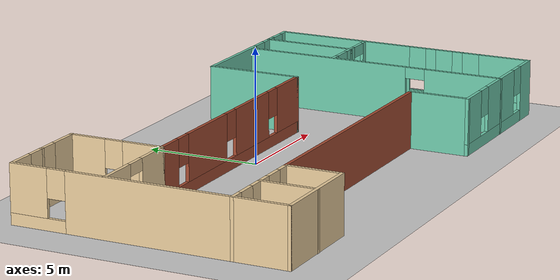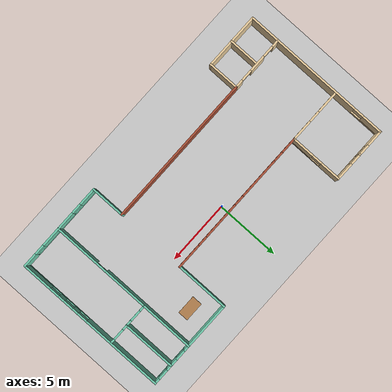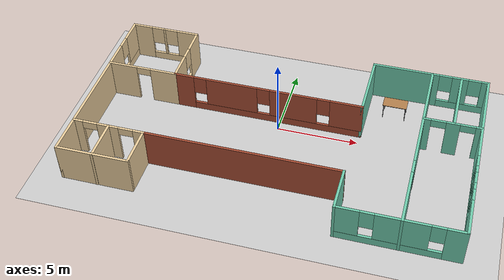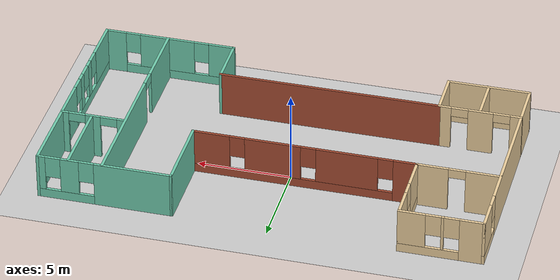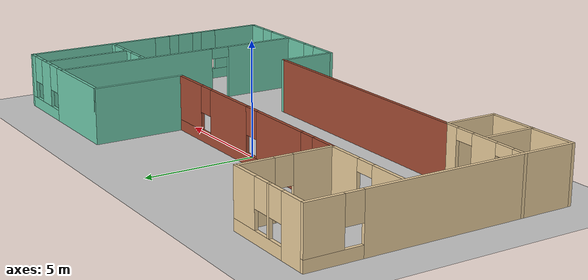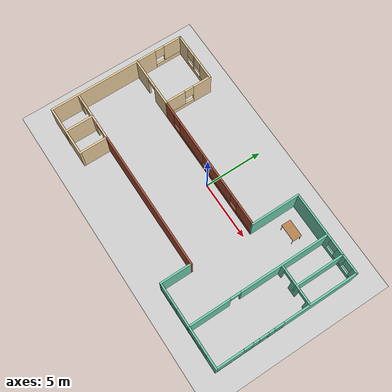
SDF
<sdf version="1.6">
 <world name="default">
  <model name="ground_plane">
   <static>1</static>
   <link name="link">
    <collision name="collision">
     <geometry><plane><normal>0 0 1</normal><size>100 100</size></plane></geometry>
     <surface><friction><ode><mu>100</mu><mu2>50</mu2></ode></friction></surface>
    </collision>
    <visual name="visual">
     <cast_shadows>0</cast_shadows>
     <geometry><plane><normal>0 0 1</normal><size>100 100</size></plane></geometry>
     <material>
      <script><uri>file://media/materials/scripts/gazebo.material</uri><name>Gazebo/Grey</name></script>
     </material>
    </visual>
   </link>
  </model>
  <model name="model.sdf">
   <pose>0.5153 -1.32728 0 0 -0 0</pose>
   <link name="Wall_100">
    <pose>-11.65 0.128883 0 0 -0 1.5708</pose>
    <visual name="Wall_100_Visual_0">
     <pose>-1.2305 0 1.25 0 -0 0</pose>
     <geometry><box><size>9.53899 0.15 2.5</size></box></geometry>
     <material>
      <script><uri>file://media/materials/scripts/gazebo.material</uri><name>Gazebo/Grey</name></script>
      <ambient>0.921569 0.807843 0.615686 1</ambient>
     </material>
     <meta><layer>0</layer></meta>
    </visual>
    <collision name="Wall_100_Collision_0">
     <geometry><box><size>9.53899 0.15 2.5</size></box></geometry>
     <pose>-1.2305 0 1.25 0 -0 0</pose>
    </collision>
    <visual name="Wall_100_Visual_1">
     <pose>4.7695 0 0.25 0 -0 0</pose>
     <geometry><box><size>2.46101 0.15 0.5</size></box></geometry>
     <material>
      <script><uri>file://media/materials/scripts/gazebo.material</uri><name>Gazebo/Grey</name></script>
      <ambient>0.921569 0.807843 0.615686 1</ambient>
     </material>
     <meta><layer>0</layer></meta>
    </visual>
    <collision name="Wall_100_Collision_1">
     <geometry><box><size>2.46101 0.15 0.5</size></box></geometry>
     <pose>4.7695 0 0.25 0 -0 0</pose>
    </collision>
    <visual name="Wall_100_Visual_2">
     <pose>5.1695 0 1.5 0 -0 0</pose>
     <geometry><box><size>1.66101 0.15 2</size></box></geometry>
     <material>
      <script><uri>file://media/materials/scripts/gazebo.material</uri><name>Gazebo/Grey</name></script>
      <ambient>0.921569 0.807843 0.615686 1</ambient>
     </material>
     <meta><layer>0</layer></meta>
    </visual>
    <collision name="Wall_100_Collision_2">
     <geometry><box><size>1.66101 0.15 2</size></box></geometry>
     <pose>5.1695 0 1.5 0 -0 0</pose>
    </collision>
    <visual name="Wall_100_Visual_3">
     <pose>3.93899 0 1.9 0 -0 0</pose>
     <geometry><box><size>0.8 0.15 1.2</size></box></geometry>
     <material>
      <script><uri>file://media/materials/scripts/gazebo.material</uri><name>Gazebo/Grey</name></script>
      <ambient>0.921569 0.807843 0.615686 1</ambient>
     </material>
     <meta><layer>0</layer></meta>
    </visual>
    <collision name="Wall_100_Collision_3">
     <geometry><box><size>0.8 0.15 1.2</size></box></geometry>
     <pose>3.93899 0 1.9 0 -0 0</pose>
    </collision>
   </link>
   <link name="Wall_102">
    <pose>-9.475 -3.44612 0 0 -0 3.14159</pose>
    <visual name="Wall_102_Visual_0">
     <pose>-1.89007 0 1.25 0 -0 0</pose>
     <geometry><box><size>0.719867 0.15 2.5</size></box></geometry>
     <material>
      <script><uri>file://media/materials/scripts/gazebo.material</uri><name>Gazebo/Grey</name></script>
      <ambient>0.921569 0.807843 0.615686 1</ambient>
     </material>
     <meta><layer>0</layer></meta>
    </visual>
    <collision name="Wall_102_Collision_0">
     <geometry><box><size>0.719867 0.15 2.5</size></box></geometry>
     <pose>-1.89007 0 1.25 0 -0 0</pose>
    </collision>
    <visual name="Wall_102_Visual_1">
     <pose>0.035726 0 1.25 0 -0 0</pose>
     <geometry><box><size>1.33172 0.15 2.5</size></box></geometry>
     <material>
      <script><uri>file://media/materials/scripts/gazebo.material</uri><name>Gazebo/Grey</name></script>
      <ambient>0.921569 0.807843 0.615686 1</ambient>
     </material>
     <meta><layer>0</layer></meta>
    </visual>
    <collision name="Wall_102_Collision_1">
     <geometry><box><size>1.33172 0.15 2.5</size></box></geometry>
     <pose>0.035726 0 1.25 0 -0 0</pose>
    </collision>
    <visual name="Wall_102_Visual_2">
     <pose>1.92579 0 1.25 0 -0 0</pose>
     <geometry><box><size>0.648414 0.15 2.5</size></box></geometry>
     <material>
      <script><uri>file://media/materials/scripts/gazebo.material</uri><name>Gazebo/Grey</name></script>
      <ambient>0.921569 0.807843 0.615686 1</ambient>
     </material>
     <meta><layer>0</layer></meta>
    </visual>
    <collision name="Wall_102_Collision_2">
     <geometry><box><size>0.648414 0.15 2.5</size></box></geometry>
     <pose>1.92579 0 1.25 0 -0 0</pose>
    </collision>
    <visual name="Wall_102_Visual_3">
     <pose>-1.08013 0 2.25 0 -0 0</pose>
     <geometry><box><size>0.9 0.15 0.5</size></box></geometry>
     <material>
      <script><uri>file://media/materials/scripts/gazebo.material</uri><name>Gazebo/Grey</name></script>
      <ambient>0.921569 0.807843 0.615686 1</ambient>
     </material>
     <meta><layer>0</layer></meta>
    </visual>
    <collision name="Wall_102_Collision_3">
     <geometry><box><size>0.9 0.15 0.5</size></box></geometry>
     <pose>-1.08013 0 2.25 0 -0 0</pose>
    </collision>
    <visual name="Wall_102_Visual_4">
     <pose>1.15159 0 2.25 0 -0 0</pose>
     <geometry><box><size>0.9 0.15 0.5</size></box></geometry>
     <material>
      <script><uri>file://media/materials/scripts/gazebo.material</uri><name>Gazebo/Grey</name></script>
      <ambient>0.921569 0.807843 0.615686 1</ambient>
     </material>
     <meta><layer>0</layer></meta>
    </visual>
    <collision name="Wall_102_Collision_4">
     <geometry><box><size>0.9 0.15 0.5</size></box></geometry>
     <pose>1.15159 0 2.25 0 -0 0</pose>
    </collision>
   </link>
   <link name="Wall_104">
    <pose>-9.475 1.95388 0 0 -0 3.14159</pose>
    <visual name="Wall_104_Visual_0">
     <pose>-1.38793 0 1.25 0 -0 0</pose>
     <geometry><box><size>1.72414 0.15 2.5</size></box></geometry>
     <material>
      <script><uri>file://media/materials/scripts/gazebo.material</uri><name>Gazebo/Grey</name></script>
      <ambient>0.921569 0.807843 0.615686 1</ambient>
     </material>
     <meta><layer>0</layer></meta>
    </visual>
    <collision name="Wall_104_Collision_0">
     <geometry><box><size>1.72414 0.15 2.5</size></box></geometry>
     <pose>-1.38793 0 1.25 0 -0 0</pose>
    </collision>
    <visual name="Wall_104_Visual_1">
     <pose>1.31207 0 1.25 0 -0 0</pose>
     <geometry><box><size>1.87586 0.15 2.5</size></box></geometry>
     <material>
      <script><uri>file://media/materials/scripts/gazebo.material</uri><name>Gazebo/Grey</name></script>
      <ambient>0.921569 0.807843 0.615686 1</ambient>
     </material>
     <meta><layer>0</layer></meta>
    </visual>
    <collision name="Wall_104_Collision_1">
     <geometry><box><size>1.87586 0.15 2.5</size></box></geometry>
     <pose>1.31207 0 1.25 0 -0 0</pose>
    </collision>
    <visual name="Wall_104_Visual_2">
     <pose>-0.07586 0 2.25 0 -0 0</pose>
     <geometry><box><size>0.9 0.15 0.5</size></box></geometry>
     <material>
      <script><uri>file://media/materials/scripts/gazebo.material</uri><name>Gazebo/Grey</name></script>
      <ambient>0.921569 0.807843 0.615686 1</ambient>
     </material>
     <meta><layer>0</layer></meta>
    </visual>
    <collision name="Wall_104_Collision_2">
     <geometry><box><size>0.9 0.15 0.5</size></box></geometry>
     <pose>-0.07586 0 2.25 0 -0 0</pose>
    </collision>
   </link>
   <link name="Wall_106">
    <pose>8.20964 -0.003883 0 0 0 -1.5708</pose>
    <visual name="Wall_106_Visual_0">
     <pose>-2.24841 0 1.25 0 -0 0</pose>
     <geometry><box><size>7.75318 0.15 2.5</size></box></geometry>
     <material>
      <script><uri>file://media/materials/scripts/gazebo.material</uri><name>Gazebo/Grey</name></script>
      <ambient>0.435294 0.796078 0.67451 1</ambient>
     </material>
     <meta><layer>0</layer></meta>
    </visual>
    <collision name="Wall_106_Collision_0">
     <geometry><box><size>7.75318 0.15 2.5</size></box></geometry>
     <pose>-2.24841 0 1.25 0 -0 0</pose>
    </collision>
    <visual name="Wall_106_Visual_1">
     <pose>4.32659 0 1.25 0 -0 0</pose>
     <geometry><box><size>3.59682 0.15 2.5</size></box></geometry>
     <material>
      <script><uri>file://media/materials/scripts/gazebo.material</uri><name>Gazebo/Grey</name></script>
      <ambient>0.435294 0.796078 0.67451 1</ambient>
     </material>
     <meta><layer>0</layer></meta>
    </visual>
    <collision name="Wall_106_Collision_1">
     <geometry><box><size>3.59682 0.15 2.5</size></box></geometry>
     <pose>4.32659 0 1.25 0 -0 0</pose>
    </collision>
    <visual name="Wall_106_Visual_2">
     <pose>2.07818 0 2.25 0 -0 0</pose>
     <geometry><box><size>0.9 0.15 0.5</size></box></geometry>
     <material>
      <script><uri>file://media/materials/scripts/gazebo.material</uri><name>Gazebo/Grey</name></script>
      <ambient>0.435294 0.796078 0.67451 1</ambient>
     </material>
     <meta><layer>0</layer></meta>
    </visual>
    <collision name="Wall_106_Collision_2">
     <geometry><box><size>0.9 0.15 0.5</size></box></geometry>
     <pose>2.07818 0 2.25 0 -0 0</pose>
    </collision>
   </link>
   <link name="Wall_130">
    <pose>9.93002 1.93375 0 0 -0 0</pose>
    <visual name="Wall_130_Visual_0">
     <pose>-1.51278 0 1.25 0 -0 0</pose>
     <geometry><box><size>0.474449 0.15 2.5</size></box></geometry>
     <material>
      <script><uri>file://media/materials/scripts/gazebo.material</uri><name>Gazebo/Grey</name></script>
      <ambient>0.435294 0.796078 0.67451 1</ambient>
     </material>
     <meta><layer>0</layer></meta>
    </visual>
    <collision name="Wall_130_Collision_0">
     <geometry><box><size>0.474449 0.15 2.5</size></box></geometry>
     <pose>-1.51278 0 1.25 0 -0 0</pose>
    </collision>
    <visual name="Wall_130_Visual_1">
     <pose>0.035744 0 1.25 0 -0 0</pose>
     <geometry><box><size>0.82259 0.15 2.5</size></box></geometry>
     <material>
      <script><uri>file://media/materials/scripts/gazebo.material</uri><name>Gazebo/Grey</name></script>
      <ambient>0.435294 0.796078 0.67451 1</ambient>
     </material>
     <meta><layer>0</layer></meta>
    </visual>
    <collision name="Wall_130_Collision_1">
     <geometry><box><size>0.82259 0.15 2.5</size></box></geometry>
     <pose>0.035744 0 1.25 0 -0 0</pose>
    </collision>
    <visual name="Wall_130_Visual_2">
     <pose>1.54852 0 1.25 0 -0 0</pose>
     <geometry><box><size>0.402961 0.15 2.5</size></box></geometry>
     <material>
      <script><uri>file://media/materials/scripts/gazebo.material</uri><name>Gazebo/Grey</name></script>
      <ambient>0.435294 0.796078 0.67451 1</ambient>
     </material>
     <meta><layer>0</layer></meta>
    </visual>
    <collision name="Wall_130_Collision_2">
     <geometry><box><size>0.402961 0.15 2.5</size></box></geometry>
     <pose>1.54852 0 1.25 0 -0 0</pose>
    </collision>
    <visual name="Wall_130_Visual_3">
     <pose>-0.825551 0 2.25 0 -0 0</pose>
     <geometry><box><size>0.9 0.15 0.5</size></box></geometry>
     <material>
      <script><uri>file://media/materials/scripts/gazebo.material</uri><name>Gazebo/Grey</name></script>
      <ambient>0.435294 0.796078 0.67451 1</ambient>
     </material>
     <meta><layer>0</layer></meta>
    </visual>
    <collision name="Wall_130_Collision_3">
     <geometry><box><size>0.9 0.15 0.5</size></box></geometry>
     <pose>-0.825551 0 2.25 0 -0 0</pose>
    </collision>
    <visual name="Wall_130_Visual_4">
     <pose>0.897039 0 2.25 0 -0 0</pose>
     <geometry><box><size>0.9 0.15 0.5</size></box></geometry>
     <material>
      <script><uri>file://media/materials/scripts/gazebo.material</uri><name>Gazebo/Grey</name></script>
      <ambient>0.435294 0.796078 0.67451 1</ambient>
     </material>
     <meta><layer>0</layer></meta>
    </visual>
    <collision name="Wall_130_Collision_4">
     <geometry><box><size>0.9 0.15 0.5</size></box></geometry>
     <pose>0.897039 0 2.25 0 -0 0</pose>
    </collision>
   </link>
   <link name="Wall_132">
    <collision name="Wall_132_Collision">
     <geometry><box><size>4.25 0.15 2.5</size></box></geometry>
     <pose>0 0 1.25 0 -0 0</pose>
    </collision>
    <visual name="Wall_132_Visual">
     <pose>0 0 1.25 0 -0 0</pose>
     <geometry><box><size>4.25 0.15 2.5</size></box></geometry>
     <material>
      <script><uri>file://media/materials/scripts/gazebo.material</uri><name>Gazebo/Grey</name></script>
      <ambient>0.435294 0.796078 0.67451 1</ambient>
     </material>
     <meta><layer>0</layer></meta>
    </visual>
    <pose>10.02 3.98375 0 0 -0 1.5708</pose>
   </link>
   <link name="Wall_139">
    <collision name="Wall_139_Collision">
     <geometry><box><size>2.5 0.15 2.5</size></box></geometry>
     <pose>0 0 1.25 0 -0 0</pose>
    </collision>
    <visual name="Wall_139_Visual">
     <pose>0 0 1.25 0 -0 0</pose>
     <geometry><box><size>2.5 0.15 2.5</size></box></geometry>
     <material>
      <script><uri>file://media/materials/scripts/gazebo.material</uri><name>Gazebo/Grey</name></script>
      <ambient>0.921569 0.807843 0.615686 1</ambient>
     </material>
     <meta><layer>0</layer></meta>
    </visual>
    <pose>-9.46252 -4.63532 0 0 0 -1.5708</pose>
   </link>
   <link name="Wall_89">
    <pose>-9.475 6.05388 0 0 -0 0</pose>
    <visual name="Wall_89_Visual_0">
     <pose>-1.58835 0 1.25 0 -0 0</pose>
     <geometry><box><size>1.3233 0.15 2.5</size></box></geometry>
     <material>
      <script><uri>file://media/materials/scripts/gazebo.material</uri><name>Gazebo/Grey</name></script>
      <ambient>0.921569 0.807843 0.615686 1</ambient>
     </material>
     <meta><layer>0</layer></meta>
    </visual>
    <collision name="Wall_89_Collision_0">
     <geometry><box><size>1.3233 0.15 2.5</size></box></geometry>
     <pose>-1.58835 0 1.25 0 -0 0</pose>
    </collision>
    <visual name="Wall_89_Visual_1">
     <pose>0.661648 0 0.25 0 -0 0</pose>
     <geometry><box><size>3.17671 0.15 0.5</size></box></geometry>
     <material>
      <script><uri>file://media/materials/scripts/gazebo.material</uri><name>Gazebo/Grey</name></script>
      <ambient>0.921569 0.807843 0.615686 1</ambient>
     </material>
     <meta><layer>0</layer></meta>
    </visual>
    <collision name="Wall_89_Collision_1">
     <geometry><box><size>3.17671 0.15 0.5</size></box></geometry>
     <pose>0.661648 0 0.25 0 -0 0</pose>
    </collision>
    <visual name="Wall_89_Visual_2">
     <pose>-0.058043 0 1.5 0 -0 0</pose>
     <geometry><box><size>0.137323 0.15 2</size></box></geometry>
     <material>
      <script><uri>file://media/materials/scripts/gazebo.material</uri><name>Gazebo/Grey</name></script>
      <ambient>0.921569 0.807843 0.615686 1</ambient>
     </material>
     <meta><layer>0</layer></meta>
    </visual>
    <collision name="Wall_89_Collision_2">
     <geometry><box><size>0.137323 0.15 2</size></box></geometry>
     <pose>-0.058043 0 1.5 0 -0 0</pose>
    </collision>
    <visual name="Wall_89_Visual_3">
     <pose>1.53031 0 1.5 0 -0 0</pose>
     <geometry><box><size>1.43938 0.15 2</size></box></geometry>
     <material>
      <script><uri>file://media/materials/scripts/gazebo.material</uri><name>Gazebo/Grey</name></script>
      <ambient>0.921569 0.807843 0.615686 1</ambient>
     </material>
     <meta><layer>0</layer></meta>
    </visual>
    <collision name="Wall_89_Collision_3">
     <geometry><box><size>1.43938 0.15 2</size></box></geometry>
     <pose>1.53031 0 1.5 0 -0 0</pose>
    </collision>
    <visual name="Wall_89_Visual_4">
     <pose>-0.526705 0 1.9 0 -0 0</pose>
     <geometry><box><size>0.8 0.15 1.2</size></box></geometry>
     <material>
      <script><uri>file://media/materials/scripts/gazebo.material</uri><name>Gazebo/Grey</name></script>
      <ambient>0.921569 0.807843 0.615686 1</ambient>
     </material>
     <meta><layer>0</layer></meta>
    </visual>
    <collision name="Wall_89_Collision_4">
     <geometry><box><size>0.8 0.15 1.2</size></box></geometry>
     <pose>-0.526705 0 1.9 0 -0 0</pose>
    </collision>
    <visual name="Wall_89_Visual_5">
     <pose>0.410618 0 1.9 0 -0 0</pose>
     <geometry><box><size>0.8 0.15 1.2</size></box></geometry>
     <material>
      <script><uri>file://media/materials/scripts/gazebo.material</uri><name>Gazebo/Grey</name></script>
      <ambient>0.921569 0.807843 0.615686 1</ambient>
     </material>
     <meta><layer>0</layer></meta>
    </visual>
    <collision name="Wall_89_Collision_5">
     <geometry><box><size>0.8 0.15 1.2</size></box></geometry>
     <pose>0.410618 0 1.9 0 -0 0</pose>
    </collision>
   </link>
   <link name="Wall_90">
    <pose>-7.3 4.00388 0 0 0 -1.5708</pose>
    <visual name="Wall_90_Visual_0">
     <pose>-1.30565 0 1.25 0 -0 0</pose>
     <geometry><box><size>1.63869 0.15 2.5</size></box></geometry>
     <material>
      <script><uri>file://media/materials/scripts/gazebo.material</uri><name>Gazebo/Grey</name></script>
      <ambient>0.921569 0.807843 0.615686 1</ambient>
     </material>
     <meta><layer>0</layer></meta>
    </visual>
    <collision name="Wall_90_Collision_0">
     <geometry><box><size>1.63869 0.15 2.5</size></box></geometry>
     <pose>-1.30565 0 1.25 0 -0 0</pose>
    </collision>
    <visual name="Wall_90_Visual_1">
     <pose>0.819347 0 0.25 0 -0 0</pose>
     <geometry><box><size>2.61131 0.15 0.5</size></box></geometry>
     <material>
      <script><uri>file://media/materials/scripts/gazebo.material</uri><name>Gazebo/Grey</name></script>
      <ambient>0.921569 0.807843 0.615686 1</ambient>
     </material>
     <meta><layer>0</layer></meta>
    </visual>
    <collision name="Wall_90_Collision_1">
     <geometry><box><size>2.61131 0.15 0.5</size></box></geometry>
     <pose>0.819347 0 0.25 0 -0 0</pose>
    </collision>
    <visual name="Wall_90_Visual_2">
     <pose>1.21935 0 1.5 0 -0 0</pose>
     <geometry><box><size>1.81131 0.15 2</size></box></geometry>
     <material>
      <script><uri>file://media/materials/scripts/gazebo.material</uri><name>Gazebo/Grey</name></script>
      <ambient>0.921569 0.807843 0.615686 1</ambient>
     </material>
     <meta><layer>0</layer></meta>
    </visual>
    <collision name="Wall_90_Collision_2">
     <geometry><box><size>1.81131 0.15 2</size></box></geometry>
     <pose>1.21935 0 1.5 0 -0 0</pose>
    </collision>
    <visual name="Wall_90_Visual_3">
     <pose>-0.086306 0 1.9 0 -0 0</pose>
     <geometry><box><size>0.8 0.15 1.2</size></box></geometry>
     <material>
      <script><uri>file://media/materials/scripts/gazebo.material</uri><name>Gazebo/Grey</name></script>
      <ambient>0.921569 0.807843 0.615686 1</ambient>
     </material>
     <meta><layer>0</layer></meta>
    </visual>
    <collision name="Wall_90_Collision_3">
     <geometry><box><size>0.8 0.15 1.2</size></box></geometry>
     <pose>-0.086306 0 1.9 0 -0 0</pose>
    </collision>
   </link>
   <link name="Wall_91">
    <pose>-1.375 1.95388 0 0 -0 0</pose>
    <visual name="Wall_91_Visual_0">
     <pose>-5.3488 0 1.25 0 -0 0</pose>
     <geometry><box><size>1.3024 0.15 2.5</size></box></geometry>
     <material>
      <script><uri>file://media/materials/scripts/gazebo.material</uri><name>Gazebo/Bricks</name></script>
      <ambient>0.996078 0.47451 0.0196078 1</ambient>
     </material>
     <meta><layer>0</layer></meta>
    </visual>
    <collision name="Wall_91_Collision_0">
     <geometry><box><size>1.3024 0.15 2.5</size></box></geometry>
     <pose>-5.3488 0 1.25 0 -0 0</pose>
    </collision>
    <visual name="Wall_91_Visual_1">
     <pose>0.651202 0 0.25 0 -0 0</pose>
     <geometry><box><size>10.6976 0.15 0.5</size></box></geometry>
     <material>
      <script><uri>file://media/materials/scripts/gazebo.material</uri><name>Gazebo/Bricks</name></script>
      <ambient>0.996078 0.47451 0.0196078 1</ambient>
     </material>
     <meta><layer>0</layer></meta>
    </visual>
    <collision name="Wall_91_Collision_1">
     <geometry><box><size>10.6976 0.15 0.5</size></box></geometry>
     <pose>0.651202 0 0.25 0 -0 0</pose>
    </collision>
    <visual name="Wall_91_Visual_2">
     <pose>-2.2611 0 1.5 0 -0 0</pose>
     <geometry><box><size>3.273 0.15 2</size></box></geometry>
     <material>
      <script><uri>file://media/materials/scripts/gazebo.material</uri><name>Gazebo/Bricks</name></script>
      <ambient>0.996078 0.47451 0.0196078 1</ambient>
     </material>
     <meta><layer>0</layer></meta>
    </visual>
    <collision name="Wall_91_Collision_2">
     <geometry><box><size>3.273 0.15 2</size></box></geometry>
     <pose>-2.2611 0 1.5 0 -0 0</pose>
    </collision>
    <visual name="Wall_91_Visual_3">
     <pose>1.66433 0 1.5 0 -0 0</pose>
     <geometry><box><size>2.97785 0.15 2</size></box></geometry>
     <material>
      <script><uri>file://media/materials/scripts/gazebo.material</uri><name>Gazebo/Bricks</name></script>
      <ambient>0.996078 0.47451 0.0196078 1</ambient>
     </material>
     <meta><layer>0</layer></meta>
    </visual>
    <collision name="Wall_91_Collision_3">
     <geometry><box><size>2.97785 0.15 2</size></box></geometry>
     <pose>1.66433 0 1.5 0 -0 0</pose>
    </collision>
    <visual name="Wall_91_Visual_4">
     <pose>4.97663 0 1.5 0 -0 0</pose>
     <geometry><box><size>2.04675 0.15 2</size></box></geometry>
     <material>
      <script><uri>file://media/materials/scripts/gazebo.material</uri><name>Gazebo/Bricks</name></script>
      <ambient>0.996078 0.47451 0.0196078 1</ambient>
     </material>
     <meta><layer>0</layer></meta>
    </visual>
    <collision name="Wall_91_Collision_4">
     <geometry><box><size>2.04675 0.15 2</size></box></geometry>
     <pose>4.97663 0 1.5 0 -0 0</pose>
    </collision>
    <visual name="Wall_91_Visual_5">
     <pose>-4.2976 0 1.9 0 -0 0</pose>
     <geometry><box><size>0.8 0.15 1.2</size></box></geometry>
     <material>
      <script><uri>file://media/materials/scripts/gazebo.material</uri><name>Gazebo/Bricks</name></script>
      <ambient>0.996078 0.47451 0.0196078 1</ambient>
     </material>
     <meta><layer>0</layer></meta>
    </visual>
    <collision name="Wall_91_Collision_5">
     <geometry><box><size>0.8 0.15 1.2</size></box></geometry>
     <pose>-4.2976 0 1.9 0 -0 0</pose>
    </collision>
    <visual name="Wall_91_Visual_6">
     <pose>-0.224598 0 1.9 0 -0 0</pose>
     <geometry><box><size>0.8 0.15 1.2</size></box></geometry>
     <material>
      <script><uri>file://media/materials/scripts/gazebo.material</uri><name>Gazebo/Bricks</name></script>
      <ambient>0.996078 0.47451 0.0196078 1</ambient>
     </material>
     <meta><layer>0</layer></meta>
    </visual>
    <collision name="Wall_91_Collision_6">
     <geometry><box><size>0.8 0.15 1.2</size></box></geometry>
     <pose>-0.224598 0 1.9 0 -0 0</pose>
    </collision>
    <visual name="Wall_91_Visual_7">
     <pose>3.55326 0 1.9 0 -0 0</pose>
     <geometry><box><size>0.8 0.15 1.2</size></box></geometry>
     <material>
      <script><uri>file://media/materials/scripts/gazebo.material</uri><name>Gazebo/Bricks</name></script>
      <ambient>0.996078 0.47451 0.0196078 1</ambient>
     </material>
     <meta><layer>0</layer></meta>
    </visual>
    <collision name="Wall_91_Collision_7">
     <geometry><box><size>0.8 0.15 1.2</size></box></geometry>
     <pose>3.55326 0 1.9 0 -0 0</pose>
    </collision>
   </link>
   <link name="Wall_92">
    <collision name="Wall_92_Collision">
     <geometry><box><size>4.25 0.15 2.5</size></box></geometry>
     <pose>0 0 1.25 0 -0 0</pose>
    </collision>
    <visual name="Wall_92_Visual">
     <pose>0 0 1.25 0 -0 0</pose>
     <geometry><box><size>4.25 0.15 2.5</size></box></geometry>
     <material>
      <script><uri>file://media/materials/scripts/gazebo.material</uri><name>Gazebo/Grey</name></script>
      <ambient>0.435294 0.796078 0.67451 1</ambient>
     </material>
     <meta><layer>0</layer></meta>
    </visual>
    <pose>4.55 4.00388 0 0 -0 1.5708</pose>
   </link>
   <link name="Wall_93">
    <pose>8.1 6.05388 0 0 -0 0</pose>
    <visual name="Wall_93_Visual_0">
     <pose>-1.53665 0 1.25 0 -0 0</pose>
     <geometry><box><size>4.1767 0.15 2.5</size></box></geometry>
     <material>
      <script><uri>file://media/materials/scripts/gazebo.material</uri><name>Gazebo/Grey</name></script>
      <ambient>0.435294 0.796078 0.67451 1</ambient>
     </material>
     <meta><layer>0</layer></meta>
    </visual>
    <collision name="Wall_93_Collision_0">
     <geometry><box><size>4.1767 0.15 2.5</size></box></geometry>
     <pose>-1.53665 0 1.25 0 -0 0</pose>
    </collision>
    <visual name="Wall_93_Visual_1">
     <pose>2.08835 0 0.25 0 -0 0</pose>
     <geometry><box><size>3.0733 0.15 0.5</size></box></geometry>
     <material>
      <script><uri>file://media/materials/scripts/gazebo.material</uri><name>Gazebo/Grey</name></script>
      <ambient>0.435294 0.796078 0.67451 1</ambient>
     </material>
     <meta><layer>0</layer></meta>
    </visual>
    <collision name="Wall_93_Collision_1">
     <geometry><box><size>3.0733 0.15 0.5</size></box></geometry>
     <pose>2.08835 0 0.25 0 -0 0</pose>
    </collision>
    <visual name="Wall_93_Visual_2">
     <pose>1.8449 0 1.5 0 -0 0</pose>
     <geometry><box><size>0.986389 0.15 2</size></box></geometry>
     <material>
      <script><uri>file://media/materials/scripts/gazebo.material</uri><name>Gazebo/Grey</name></script>
      <ambient>0.435294 0.796078 0.67451 1</ambient>
     </material>
     <meta><layer>0</layer></meta>
    </visual>
    <collision name="Wall_93_Collision_2">
     <geometry><box><size>0.986389 0.15 2</size></box></geometry>
     <pose>1.8449 0 1.5 0 -0 0</pose>
    </collision>
    <visual name="Wall_93_Visual_3">
     <pose>3.38155 0 1.5 0 -0 0</pose>
     <geometry><box><size>0.486907 0.15 2</size></box></geometry>
     <material>
      <script><uri>file://media/materials/scripts/gazebo.material</uri><name>Gazebo/Grey</name></script>
      <ambient>0.435294 0.796078 0.67451 1</ambient>
     </material>
     <meta><layer>0</layer></meta>
    </visual>
    <collision name="Wall_93_Collision_3">
     <geometry><box><size>0.486907 0.15 2</size></box></geometry>
     <pose>3.38155 0 1.5 0 -0 0</pose>
    </collision>
    <visual name="Wall_93_Visual_4">
     <pose>0.951704 0 1.9 0 -0 0</pose>
     <geometry><box><size>0.8 0.15 1.2</size></box></geometry>
     <material>
      <script><uri>file://media/materials/scripts/gazebo.material</uri><name>Gazebo/Grey</name></script>
      <ambient>0.435294 0.796078 0.67451 1</ambient>
     </material>
     <meta><layer>0</layer></meta>
    </visual>
    <collision name="Wall_93_Collision_4">
     <geometry><box><size>0.8 0.15 1.2</size></box></geometry>
     <pose>0.951704 0 1.9 0 -0 0</pose>
    </collision>
    <visual name="Wall_93_Visual_5">
     <pose>2.73809 0 1.9 0 -0 0</pose>
     <geometry><box><size>0.8 0.15 1.2</size></box></geometry>
     <material>
      <script><uri>file://media/materials/scripts/gazebo.material</uri><name>Gazebo/Grey</name></script>
      <ambient>0.435294 0.796078 0.67451 1</ambient>
     </material>
     <meta><layer>0</layer></meta>
    </visual>
    <collision name="Wall_93_Collision_5">
     <geometry><box><size>0.8 0.15 1.2</size></box></geometry>
     <pose>2.73809 0 1.9 0 -0 0</pose>
    </collision>
   </link>
   <link name="Wall_94">
    <pose>11.65 0.003883 0 0 0 -1.5708</pose>
    <visual name="Wall_94_Visual_0">
     <pose>-2.8954 0 1.25 0 -0 0</pose>
     <geometry><box><size>6.45921 0.15 2.5</size></box></geometry>
     <material>
      <script><uri>file://media/materials/scripts/gazebo.material</uri><name>Gazebo/Grey</name></script>
      <ambient>0.435294 0.796078 0.67451 1</ambient>
     </material>
     <meta><layer>0</layer></meta>
    </visual>
    <collision name="Wall_94_Collision_0">
     <geometry><box><size>6.45921 0.15 2.5</size></box></geometry>
     <pose>-2.8954 0 1.25 0 -0 0</pose>
    </collision>
    <visual name="Wall_94_Visual_1">
     <pose>3.2296 0 0.25 0 -0 0</pose>
     <geometry><box><size>5.79079 0.15 0.5</size></box></geometry>
     <material>
      <script><uri>file://media/materials/scripts/gazebo.material</uri><name>Gazebo/Grey</name></script>
      <ambient>0.435294 0.796078 0.67451 1</ambient>
     </material>
     <meta><layer>0</layer></meta>
    </visual>
    <collision name="Wall_94_Collision_1">
     <geometry><box><size>5.79079 0.15 0.5</size></box></geometry>
     <pose>3.2296 0 0.25 0 -0 0</pose>
    </collision>
    <visual name="Wall_94_Visual_2">
     <pose>1.3814 0 1.5 0 -0 0</pose>
     <geometry><box><size>0.494397 0.15 2</size></box></geometry>
     <material>
      <script><uri>file://media/materials/scripts/gazebo.material</uri><name>Gazebo/Grey</name></script>
      <ambient>0.435294 0.796078 0.67451 1</ambient>
     </material>
     <meta><layer>0</layer></meta>
    </visual>
    <collision name="Wall_94_Collision_2">
     <geometry><box><size>0.494397 0.15 2</size></box></geometry>
     <pose>1.3814 0 1.5 0 -0 0</pose>
    </collision>
    <visual name="Wall_94_Visual_3">
     <pose>2.6758 0 1.5 0 -0 0</pose>
     <geometry><box><size>0.494397 0.15 2</size></box></geometry>
     <material>
      <script><uri>file://media/materials/scripts/gazebo.material</uri><name>Gazebo/Grey</name></script>
      <ambient>0.435294 0.796078 0.67451 1</ambient>
     </material>
     <meta><layer>0</layer></meta>
    </visual>
    <collision name="Wall_94_Collision_3">
     <geometry><box><size>0.494397 0.15 2</size></box></geometry>
     <pose>2.6758 0 1.5 0 -0 0</pose>
    </collision>
    <visual name="Wall_94_Visual_4">
     <pose>4.924 0 1.5 0 -0 0</pose>
     <geometry><box><size>2.402 0.15 2</size></box></geometry>
     <material>
      <script><uri>file://media/materials/scripts/gazebo.material</uri><name>Gazebo/Grey</name></script>
      <ambient>0.435294 0.796078 0.67451 1</ambient>
     </material>
     <meta><layer>0</layer></meta>
    </visual>
    <collision name="Wall_94_Collision_4">
     <geometry><box><size>2.402 0.15 2</size></box></geometry>
     <pose>4.924 0 1.5 0 -0 0</pose>
    </collision>
    <visual name="Wall_94_Visual_5">
     <pose>0.734206 0 1.9 0 -0 0</pose>
     <geometry><box><size>0.8 0.15 1.2</size></box></geometry>
     <material>
      <script><uri>file://media/materials/scripts/gazebo.material</uri><name>Gazebo/Grey</name></script>
      <ambient>0.435294 0.796078 0.67451 1</ambient>
     </material>
     <meta><layer>0</layer></meta>
    </visual>
    <collision name="Wall_94_Collision_5">
     <geometry><box><size>0.8 0.15 1.2</size></box></geometry>
     <pose>0.734206 0 1.9 0 -0 0</pose>
    </collision>
    <visual name="Wall_94_Visual_6">
     <pose>2.0286 0 1.9 0 -0 0</pose>
     <geometry><box><size>0.8 0.15 1.2</size></box></geometry>
     <material>
      <script><uri>file://media/materials/scripts/gazebo.material</uri><name>Gazebo/Grey</name></script>
      <ambient>0.435294 0.796078 0.67451 1</ambient>
     </material>
     <meta><layer>0</layer></meta>
    </visual>
    <collision name="Wall_94_Collision_6">
     <geometry><box><size>0.8 0.15 1.2</size></box></geometry>
     <pose>2.0286 0 1.9 0 -0 0</pose>
    </collision>
    <visual name="Wall_94_Visual_7">
     <pose>3.323 0 1.9 0 -0 0</pose>
     <geometry><box><size>0.8 0.15 1.2</size></box></geometry>
     <material>
      <script><uri>file://media/materials/scripts/gazebo.material</uri><name>Gazebo/Grey</name></script>
      <ambient>0.435294 0.796078 0.67451 1</ambient>
     </material>
     <meta><layer>0</layer></meta>
    </visual>
    <collision name="Wall_94_Collision_7">
     <geometry><box><size>0.8 0.15 1.2</size></box></geometry>
     <pose>3.323 0 1.9 0 -0 0</pose>
    </collision>
   </link>
   <link name="Wall_95">
    <pose>8.1 -6.04612 0 0 -0 3.14159</pose>
    <visual name="Wall_95_Visual_0">
     <pose>-3.03786 0 1.25 0 -0 0</pose>
     <geometry><box><size>1.17428 0.15 2.5</size></box></geometry>
     <material>
      <script><uri>file://media/materials/scripts/gazebo.material</uri><name>Gazebo/Grey</name></script>
      <ambient>0.435294 0.796078 0.67451 1</ambient>
     </material>
     <meta><layer>0</layer></meta>
    </visual>
    <collision name="Wall_95_Collision_0">
     <geometry><box><size>1.17428 0.15 2.5</size></box></geometry>
     <pose>-3.03786 0 1.25 0 -0 0</pose>
    </collision>
    <visual name="Wall_95_Visual_1">
     <pose>0.587142 0 0.25 0 -0 0</pose>
     <geometry><box><size>6.07572 0.15 0.5</size></box></geometry>
     <material>
      <script><uri>file://media/materials/scripts/gazebo.material</uri><name>Gazebo/Grey</name></script>
      <ambient>0.435294 0.796078 0.67451 1</ambient>
     </material>
     <meta><layer>0</layer></meta>
    </visual>
    <collision name="Wall_95_Collision_1">
     <geometry><box><size>6.07572 0.15 0.5</size></box></geometry>
     <pose>0.587142 0 0.25 0 -0 0</pose>
    </collision>
    <visual name="Wall_95_Visual_2">
     <pose>-0.142597 0 1.5 0 -0 0</pose>
     <geometry><box><size>3.01624 0.15 2</size></box></geometry>
     <material>
      <script><uri>file://media/materials/scripts/gazebo.material</uri><name>Gazebo/Grey</name></script>
      <ambient>0.435294 0.796078 0.67451 1</ambient>
     </material>
     <meta><layer>0</layer></meta>
    </visual>
    <collision name="Wall_95_Collision_2">
     <geometry><box><size>3.01624 0.15 2</size></box></geometry>
     <pose>-0.142597 0 1.5 0 -0 0</pose>
    </collision>
    <visual name="Wall_95_Visual_3">
     <pose>2.89526 0 1.5 0 -0 0</pose>
     <geometry><box><size>1.45948 0.15 2</size></box></geometry>
     <material>
      <script><uri>file://media/materials/scripts/gazebo.material</uri><name>Gazebo/Grey</name></script>
      <ambient>0.435294 0.796078 0.67451 1</ambient>
     </material>
     <meta><layer>0</layer></meta>
    </visual>
    <collision name="Wall_95_Collision_3">
     <geometry><box><size>1.45948 0.15 2</size></box></geometry>
     <pose>2.89526 0 1.5 0 -0 0</pose>
    </collision>
    <visual name="Wall_95_Visual_4">
     <pose>-2.05072 0 1.9 0 -0 0</pose>
     <geometry><box><size>0.8 0.15 1.2</size></box></geometry>
     <material>
      <script><uri>file://media/materials/scripts/gazebo.material</uri><name>Gazebo/Grey</name></script>
      <ambient>0.435294 0.796078 0.67451 1</ambient>
     </material>
     <meta><layer>0</layer></meta>
    </visual>
    <collision name="Wall_95_Collision_4">
     <geometry><box><size>0.8 0.15 1.2</size></box></geometry>
     <pose>-2.05072 0 1.9 0 -0 0</pose>
    </collision>
    <visual name="Wall_95_Visual_5">
     <pose>1.76552 0 1.9 0 -0 0</pose>
     <geometry><box><size>0.8 0.15 1.2</size></box></geometry>
     <material>
      <script><uri>file://media/materials/scripts/gazebo.material</uri><name>Gazebo/Grey</name></script>
      <ambient>0.435294 0.796078 0.67451 1</ambient>
     </material>
     <meta><layer>0</layer></meta>
    </visual>
    <collision name="Wall_95_Collision_5">
     <geometry><box><size>0.8 0.15 1.2</size></box></geometry>
     <pose>1.76552 0 1.9 0 -0 0</pose>
    </collision>
   </link>
   <link name="Wall_96">
    <collision name="Wall_96_Collision">
     <geometry><box><size>2.75 0.15 2.5</size></box></geometry>
     <pose>0 0 1.25 0 -0 0</pose>
    </collision>
    <visual name="Wall_96_Visual">
     <pose>0 0 1.25 0 -0 0</pose>
     <geometry><box><size>2.75 0.15 2.5</size></box></geometry>
     <material>
      <script><uri>file://media/materials/scripts/gazebo.material</uri><name>Gazebo/Grey</name></script>
      <ambient>0.435294 0.796078 0.67451 1</ambient>
     </material>
     <meta><layer>0</layer></meta>
    </visual>
    <pose>4.55 -4.74612 0 0 -0 1.5708</pose>
   </link>
   <link name="Wall_97">
    <collision name="Wall_97_Collision">
     <geometry><box><size>12 0.15 2.5</size></box></geometry>
     <pose>0 0 1.25 0 -0 0</pose>
    </collision>
    <visual name="Wall_97_Visual">
     <pose>0 0 1.25 0 -0 0</pose>
     <geometry><box><size>12 0.15 2.5</size></box></geometry>
     <material>
      <script><uri>file://media/materials/scripts/gazebo.material</uri><name>Gazebo/Bricks</name></script>
      <ambient>0.996078 0.47451 0.0196078 1</ambient>
     </material>
     <meta><layer>0</layer></meta>
    </visual>
    <pose>-1.375 -3.44612 0 0 -0 3.14159</pose>
   </link>
   <link name="Wall_98">
    <collision name="Wall_98_Collision">
     <geometry><box><size>2.5 0.15 2.5</size></box></geometry>
     <pose>0 0 1.25 0 -0 0</pose>
    </collision>
    <visual name="Wall_98_Visual">
     <pose>0 0 1.25 0 -0 0</pose>
     <geometry><box><size>2.5 0.15 2.5</size></box></geometry>
     <material>
      <script><uri>file://media/materials/scripts/gazebo.material</uri><name>Gazebo/Grey</name></script>
      <ambient>0.921569 0.807843 0.615686 1</ambient>
     </material>
     <meta><layer>0</layer></meta>
    </visual>
    <pose>-7.3 -4.62112 0 0 0 -1.5708</pose>
   </link>
   <link name="Wall_99">
    <collision name="Wall_99_Collision">
     <geometry><box><size>4.5 0.15 2.5</size></box></geometry>
     <pose>0 0 1.25 0 -0 0</pose>
    </collision>
    <visual name="Wall_99_Visual">
     <pose>0 0 1.25 0 -0 0</pose>
     <geometry><box><size>4.5 0.15 2.5</size></box></geometry>
     <material>
      <script><uri>file://media/materials/scripts/gazebo.material</uri><name>Gazebo/Grey</name></script>
      <ambient>0.921569 0.807843 0.615686 1</ambient>
     </material>
     <meta><layer>0</layer></meta>
    </visual>
    <pose>-9.475 -5.79612 0 0 -0 3.14159</pose>
   </link>
   <static>1</static>
  </model>
  <model name="table">
   <static>1</static>
   <link name="link">
    <collision name="surface">
     <pose>0 0 1 0 -0 0</pose>
     <geometry><box><size>1.5 0.8 0.03</size></box></geometry>
     <surface><friction><ode><mu>0.6</mu><mu2>0.6</mu2></ode></friction></surface>
    </collision>
    <visual name="visual1">
     <pose>0 0 1 0 -0 0</pose>
     <geometry><box><size>1.5 0.8 0.03</size></box></geometry>
     <material>
      <script><uri>file://media/materials/scripts/gazebo.material</uri><name>Gazebo/Wood</name></script>
     </material>
    </visual>
    <collision name="front_left_leg">
     <pose>0.68 0.38 0.5 0 -0 0</pose>
     <geometry><cylinder><radius>0.02</radius><length>1</length></cylinder></geometry>
    </collision>
    <visual name="front_left_leg">
     <pose>0.68 0.38 0.5 0 -0 0</pose>
     <geometry><cylinder><radius>0.02</radius><length>1</length></cylinder></geometry>
     <material>
      <script><uri>file://media/materials/scripts/gazebo.material</uri><name>Gazebo/Grey</name></script>
     </material>
    </visual>
    <collision name="front_right_leg">
     <pose>0.68 -0.38 0.5 0 -0 0</pose>
     <geometry><cylinder><radius>0.02</radius><length>1</length></cylinder></geometry>
    </collision>
    <visual name="front_right_leg">
     <pose>0.68 -0.38 0.5 0 -0 0</pose>
     <geometry><cylinder><radius>0.02</radius><length>1</length></cylinder></geometry>
     <material>
      <script><uri>file://media/materials/scripts/gazebo.material</uri><name>Gazebo/Grey</name></script>
     </material>
    </visual>
    <collision name="back_right_leg">
     <pose>-0.68 -0.38 0.5 0 -0 0</pose>
     <geometry><cylinder><radius>0.02</radius><length>1</length></cylinder></geometry>
    </collision>
    <visual name="back_right_leg">
     <pose>-0.68 -0.38 0.5 0 -0 0</pose>
     <geometry><cylinder><radius>0.02</radius><length>1</length></cylinder></geometry>
     <material>
      <script><uri>file://media/materials/scripts/gazebo.material</uri><name>Gazebo/Grey</name></script>
     </material>
    </visual>
    <collision name="back_left_leg">
     <pose>-0.68 0.38 0.5 0 -0 0</pose>
     <geometry><cylinder><radius>0.02</radius><length>1</length></cylinder></geometry>
    </collision>
    <visual name="back_left_leg">
     <pose>-0.68 0.38 0.5 0 -0 0</pose>
     <geometry><cylinder><radius>0.02</radius><length>1</length></cylinder></geometry>
     <material>
      <script><uri>file://media/materials/scripts/gazebo.material</uri><name>Gazebo/Grey</name></script>
     </material>
    </visual>
   </link>
   <pose>6.79375 3.11106 0 0 -0 0</pose>
  </model>
 </world>
</sdf>
